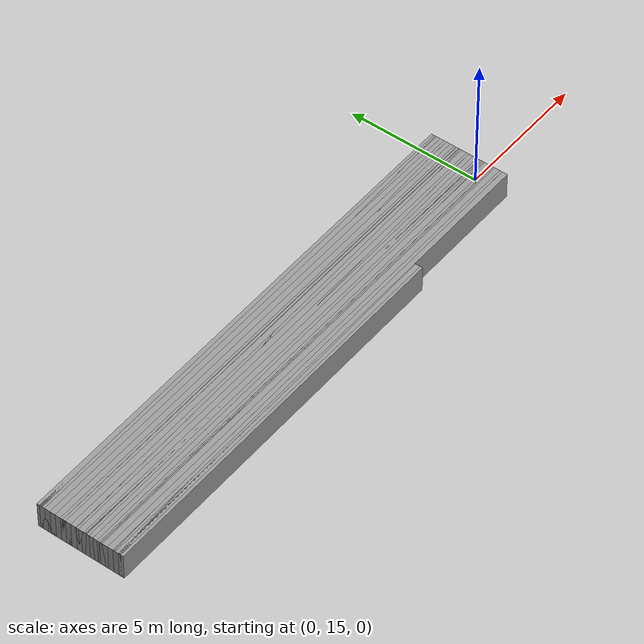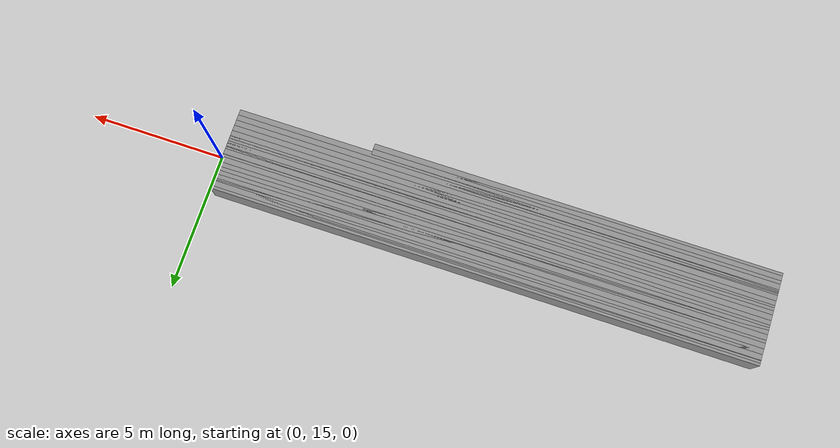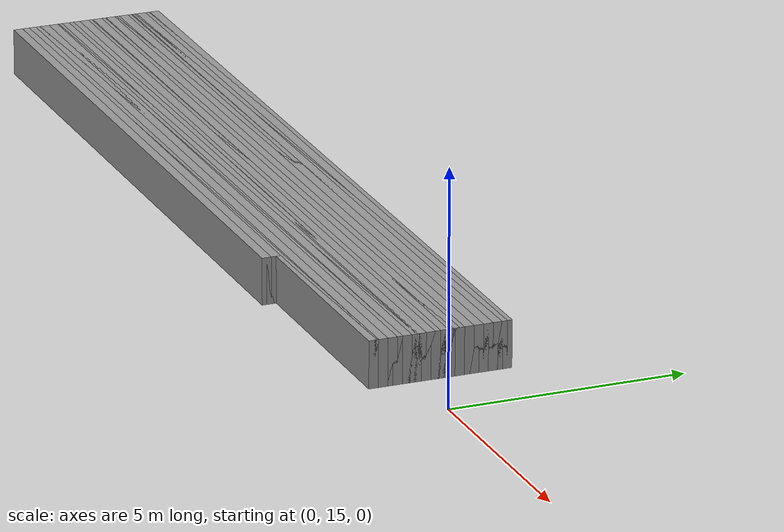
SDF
<sdf version="1.6">
 <world name="GridMap">
  <model name="GridMap">
   <link name="Wall_(126.0,133.0)">
    <collision name="Wall_(126.0,133.0)_Collision">
     <geometry><box><size>14.600000000000001 0.2 1.0</size></box></geometry>
     <pose>-12.600000000000001 13.3 0.5 0 -0 0</pose>
    </collision>
    <visual name="Wall_(126.0,133.0)_Visual">
     <geometry><box><size>14.600000000000001 0.2 1.0</size></box></geometry>
     <pose>-12.600000000000001 13.3 0.5 0 -0 0</pose>
     <material>
      <script><uri>file://media/materials/scripts/gazebo.material</uri><name>Gazebo/Grey</name></script>
      <ambient>1 1 1 1</ambient>
     </material>
     <meta><layer>0</layer></meta>
    </visual>
    <pose>0 0 0.5 0 -0 0</pose>
   </link>
   <link name="Wall_(126.0,134.0)">
    <collision name="Wall_(126.0,134.0)_Collision">
     <geometry><box><size>14.600000000000001 0.2 1.0</size></box></geometry>
     <pose>-12.600000000000001 13.4 0.5 0 -0 0</pose>
    </collision>
    <visual name="Wall_(126.0,134.0)_Visual">
     <geometry><box><size>14.600000000000001 0.2 1.0</size></box></geometry>
     <pose>-12.600000000000001 13.4 0.5 0 -0 0</pose>
     <material>
      <script><uri>file://media/materials/scripts/gazebo.material</uri><name>Gazebo/Grey</name></script>
      <ambient>1 1 1 1</ambient>
     </material>
     <meta><layer>0</layer></meta>
    </visual>
    <pose>0 0 0.5 0 -0 0</pose>
   </link>
   <link name="Wall_(126.0,135.0)">
    <collision name="Wall_(126.0,135.0)_Collision">
     <geometry><box><size>14.600000000000001 0.2 1.0</size></box></geometry>
     <pose>-12.600000000000001 13.5 0.5 0 -0 0</pose>
    </collision>
    <visual name="Wall_(126.0,135.0)_Visual">
     <geometry><box><size>14.600000000000001 0.2 1.0</size></box></geometry>
     <pose>-12.600000000000001 13.5 0.5 0 -0 0</pose>
     <material>
      <script><uri>file://media/materials/scripts/gazebo.material</uri><name>Gazebo/Grey</name></script>
      <ambient>1 1 1 1</ambient>
     </material>
     <meta><layer>0</layer></meta>
    </visual>
    <pose>0 0 0.5 0 -0 0</pose>
   </link>
   <link name="Wall_(101.5,136.0)">
    <collision name="Wall_(101.5,136.0)_Collision">
     <geometry><box><size>19.5 0.2 1.0</size></box></geometry>
     <pose>-10.15 13.600000000000001 0.5 0 -0 0</pose>
    </collision>
    <visual name="Wall_(101.5,136.0)_Visual">
     <geometry><box><size>19.5 0.2 1.0</size></box></geometry>
     <pose>-10.15 13.600000000000001 0.5 0 -0 0</pose>
     <material>
      <script><uri>file://media/materials/scripts/gazebo.material</uri><name>Gazebo/Grey</name></script>
      <ambient>1 1 1 1</ambient>
     </material>
     <meta><layer>0</layer></meta>
    </visual>
    <pose>0 0 0.5 0 -0 0</pose>
   </link>
   <link name="Wall_(101.5,137.0)">
    <collision name="Wall_(101.5,137.0)_Collision">
     <geometry><box><size>19.5 0.2 1.0</size></box></geometry>
     <pose>-10.15 13.700000000000001 0.5 0 -0 0</pose>
    </collision>
    <visual name="Wall_(101.5,137.0)_Visual">
     <geometry><box><size>19.5 0.2 1.0</size></box></geometry>
     <pose>-10.15 13.700000000000001 0.5 0 -0 0</pose>
     <material>
      <script><uri>file://media/materials/scripts/gazebo.material</uri><name>Gazebo/Grey</name></script>
      <ambient>1 1 1 1</ambient>
     </material>
     <meta><layer>0</layer></meta>
    </visual>
    <pose>0 0 0.5 0 -0 0</pose>
   </link>
   <link name="Wall_(101.5,138.0)">
    <collision name="Wall_(101.5,138.0)_Collision">
     <geometry><box><size>19.5 0.2 1.0</size></box></geometry>
     <pose>-10.15 13.8 0.5 0 -0 0</pose>
    </collision>
    <visual name="Wall_(101.5,138.0)_Visual">
     <geometry><box><size>19.5 0.2 1.0</size></box></geometry>
     <pose>-10.15 13.8 0.5 0 -0 0</pose>
     <material>
      <script><uri>file://media/materials/scripts/gazebo.material</uri><name>Gazebo/Grey</name></script>
      <ambient>1 1 1 1</ambient>
     </material>
     <meta><layer>0</layer></meta>
    </visual>
    <pose>0 0 0.5 0 -0 0</pose>
   </link>
   <link name="Wall_(101.5,139.0)">
    <collision name="Wall_(101.5,139.0)_Collision">
     <geometry><box><size>19.5 0.2 1.0</size></box></geometry>
     <pose>-10.15 13.9 0.5 0 -0 0</pose>
    </collision>
    <visual name="Wall_(101.5,139.0)_Visual">
     <geometry><box><size>19.5 0.2 1.0</size></box></geometry>
     <pose>-10.15 13.9 0.5 0 -0 0</pose>
     <material>
      <script><uri>file://media/materials/scripts/gazebo.material</uri><name>Gazebo/Grey</name></script>
      <ambient>1 1 1 1</ambient>
     </material>
     <meta><layer>0</layer></meta>
    </visual>
    <pose>0 0 0.5 0 -0 0</pose>
   </link>
   <link name="Wall_(101.5,140.0)">
    <collision name="Wall_(101.5,140.0)_Collision">
     <geometry><box><size>19.5 0.2 1.0</size></box></geometry>
     <pose>-10.15 14.0 0.5 0 -0 0</pose>
    </collision>
    <visual name="Wall_(101.5,140.0)_Visual">
     <geometry><box><size>19.5 0.2 1.0</size></box></geometry>
     <pose>-10.15 14.0 0.5 0 -0 0</pose>
     <material>
      <script><uri>file://media/materials/scripts/gazebo.material</uri><name>Gazebo/Grey</name></script>
      <ambient>1 1 1 1</ambient>
     </material>
     <meta><layer>0</layer></meta>
    </visual>
    <pose>0 0 0.5 0 -0 0</pose>
   </link>
   <link name="Wall_(101.5,141.0)">
    <collision name="Wall_(101.5,141.0)_Collision">
     <geometry><box><size>19.5 0.2 1.0</size></box></geometry>
     <pose>-10.15 14.100000000000001 0.5 0 -0 0</pose>
    </collision>
    <visual name="Wall_(101.5,141.0)_Visual">
     <geometry><box><size>19.5 0.2 1.0</size></box></geometry>
     <pose>-10.15 14.100000000000001 0.5 0 -0 0</pose>
     <material>
      <script><uri>file://media/materials/scripts/gazebo.material</uri><name>Gazebo/Grey</name></script>
      <ambient>1 1 1 1</ambient>
     </material>
     <meta><layer>0</layer></meta>
    </visual>
    <pose>0 0 0.5 0 -0 0</pose>
   </link>
   <link name="Wall_(101.5,142.0)">
    <collision name="Wall_(101.5,142.0)_Collision">
     <geometry><box><size>19.5 0.2 1.0</size></box></geometry>
     <pose>-10.15 14.200000000000001 0.5 0 -0 0</pose>
    </collision>
    <visual name="Wall_(101.5,142.0)_Visual">
     <geometry><box><size>19.5 0.2 1.0</size></box></geometry>
     <pose>-10.15 14.200000000000001 0.5 0 -0 0</pose>
     <material>
      <script><uri>file://media/materials/scripts/gazebo.material</uri><name>Gazebo/Grey</name></script>
      <ambient>1 1 1 1</ambient>
     </material>
     <meta><layer>0</layer></meta>
    </visual>
    <pose>0 0 0.5 0 -0 0</pose>
   </link>
   <link name="Wall_(101.5,143.0)">
    <collision name="Wall_(101.5,143.0)_Collision">
     <geometry><box><size>19.5 0.2 1.0</size></box></geometry>
     <pose>-10.15 14.3 0.5 0 -0 0</pose>
    </collision>
    <visual name="Wall_(101.5,143.0)_Visual">
     <geometry><box><size>19.5 0.2 1.0</size></box></geometry>
     <pose>-10.15 14.3 0.5 0 -0 0</pose>
     <material>
      <script><uri>file://media/materials/scripts/gazebo.material</uri><name>Gazebo/Grey</name></script>
      <ambient>1 1 1 1</ambient>
     </material>
     <meta><layer>0</layer></meta>
    </visual>
    <pose>0 0 0.5 0 -0 0</pose>
   </link>
   <link name="Wall_(101.5,144.0)">
    <collision name="Wall_(101.5,144.0)_Collision">
     <geometry><box><size>19.5 0.2 1.0</size></box></geometry>
     <pose>-10.15 14.4 0.5 0 -0 0</pose>
    </collision>
    <visual name="Wall_(101.5,144.0)_Visual">
     <geometry><box><size>19.5 0.2 1.0</size></box></geometry>
     <pose>-10.15 14.4 0.5 0 -0 0</pose>
     <material>
      <script><uri>file://media/materials/scripts/gazebo.material</uri><name>Gazebo/Grey</name></script>
      <ambient>1 1 1 1</ambient>
     </material>
     <meta><layer>0</layer></meta>
    </visual>
    <pose>0 0 0.5 0 -0 0</pose>
   </link>
   <link name="Wall_(101.5,145.0)">
    <collision name="Wall_(101.5,145.0)_Collision">
     <geometry><box><size>19.5 0.2 1.0</size></box></geometry>
     <pose>-10.15 14.5 0.5 0 -0 0</pose>
    </collision>
    <visual name="Wall_(101.5,145.0)_Visual">
     <geometry><box><size>19.5 0.2 1.0</size></box></geometry>
     <pose>-10.15 14.5 0.5 0 -0 0</pose>
     <material>
      <script><uri>file://media/materials/scripts/gazebo.material</uri><name>Gazebo/Grey</name></script>
      <ambient>1 1 1 1</ambient>
     </material>
     <meta><layer>0</layer></meta>
    </visual>
    <pose>0 0 0.5 0 -0 0</pose>
   </link>
   <link name="Wall_(101.5,146.0)">
    <collision name="Wall_(101.5,146.0)_Collision">
     <geometry><box><size>19.5 0.2 1.0</size></box></geometry>
     <pose>-10.15 14.600000000000001 0.5 0 -0 0</pose>
    </collision>
    <visual name="Wall_(101.5,146.0)_Visual">
     <geometry><box><size>19.5 0.2 1.0</size></box></geometry>
     <pose>-10.15 14.600000000000001 0.5 0 -0 0</pose>
     <material>
      <script><uri>file://media/materials/scripts/gazebo.material</uri><name>Gazebo/Grey</name></script>
      <ambient>1 1 1 1</ambient>
     </material>
     <meta><layer>0</layer></meta>
    </visual>
    <pose>0 0 0.5 0 -0 0</pose>
   </link>
   <link name="Wall_(101.5,147.0)">
    <collision name="Wall_(101.5,147.0)_Collision">
     <geometry><box><size>19.5 0.2 1.0</size></box></geometry>
     <pose>-10.15 14.700000000000001 0.5 0 -0 0</pose>
    </collision>
    <visual name="Wall_(101.5,147.0)_Visual">
     <geometry><box><size>19.5 0.2 1.0</size></box></geometry>
     <pose>-10.15 14.700000000000001 0.5 0 -0 0</pose>
     <material>
      <script><uri>file://media/materials/scripts/gazebo.material</uri><name>Gazebo/Grey</name></script>
      <ambient>1 1 1 1</ambient>
     </material>
     <meta><layer>0</layer></meta>
    </visual>
    <pose>0 0 0.5 0 -0 0</pose>
   </link>
   <link name="Wall_(101.5,148.0)">
    <collision name="Wall_(101.5,148.0)_Collision">
     <geometry><box><size>19.5 0.2 1.0</size></box></geometry>
     <pose>-10.15 14.8 0.5 0 -0 0</pose>
    </collision>
    <visual name="Wall_(101.5,148.0)_Visual">
     <geometry><box><size>19.5 0.2 1.0</size></box></geometry>
     <pose>-10.15 14.8 0.5 0 -0 0</pose>
     <material>
      <script><uri>file://media/materials/scripts/gazebo.material</uri><name>Gazebo/Grey</name></script>
      <ambient>1 1 1 1</ambient>
     </material>
     <meta><layer>0</layer></meta>
    </visual>
    <pose>0 0 0.5 0 -0 0</pose>
   </link>
   <link name="Wall_(101.5,149.0)">
    <collision name="Wall_(101.5,149.0)_Collision">
     <geometry><box><size>19.5 0.2 1.0</size></box></geometry>
     <pose>-10.15 14.9 0.5 0 -0 0</pose>
    </collision>
    <visual name="Wall_(101.5,149.0)_Visual">
     <geometry><box><size>19.5 0.2 1.0</size></box></geometry>
     <pose>-10.15 14.9 0.5 0 -0 0</pose>
     <material>
      <script><uri>file://media/materials/scripts/gazebo.material</uri><name>Gazebo/Grey</name></script>
      <ambient>1 1 1 1</ambient>
     </material>
     <meta><layer>0</layer></meta>
    </visual>
    <pose>0 0 0.5 0 -0 0</pose>
   </link>
   <link name="Wall_(101.5,150.0)">
    <collision name="Wall_(101.5,150.0)_Collision">
     <geometry><box><size>19.5 0.2 1.0</size></box></geometry>
     <pose>-10.15 15.0 0.5 0 -0 0</pose>
    </collision>
    <visual name="Wall_(101.5,150.0)_Visual">
     <geometry><box><size>19.5 0.2 1.0</size></box></geometry>
     <pose>-10.15 15.0 0.5 0 -0 0</pose>
     <material>
      <script><uri>file://media/materials/scripts/gazebo.material</uri><name>Gazebo/Grey</name></script>
      <ambient>1 1 1 1</ambient>
     </material>
     <meta><layer>0</layer></meta>
    </visual>
    <pose>0 0 0.5 0 -0 0</pose>
   </link>
   <link name="Wall_(101.5,151.0)">
    <collision name="Wall_(101.5,151.0)_Collision">
     <geometry><box><size>19.5 0.2 1.0</size></box></geometry>
     <pose>-10.15 15.100000000000001 0.5 0 -0 0</pose>
    </collision>
    <visual name="Wall_(101.5,151.0)_Visual">
     <geometry><box><size>19.5 0.2 1.0</size></box></geometry>
     <pose>-10.15 15.100000000000001 0.5 0 -0 0</pose>
     <material>
      <script><uri>file://media/materials/scripts/gazebo.material</uri><name>Gazebo/Grey</name></script>
      <ambient>1 1 1 1</ambient>
     </material>
     <meta><layer>0</layer></meta>
    </visual>
    <pose>0 0 0.5 0 -0 0</pose>
   </link>
   <link name="Wall_(101.5,152.0)">
    <collision name="Wall_(101.5,152.0)_Collision">
     <geometry><box><size>19.5 0.2 1.0</size></box></geometry>
     <pose>-10.15 15.200000000000001 0.5 0 -0 0</pose>
    </collision>
    <visual name="Wall_(101.5,152.0)_Visual">
     <geometry><box><size>19.5 0.2 1.0</size></box></geometry>
     <pose>-10.15 15.200000000000001 0.5 0 -0 0</pose>
     <material>
      <script><uri>file://media/materials/scripts/gazebo.material</uri><name>Gazebo/Grey</name></script>
      <ambient>1 1 1 1</ambient>
     </material>
     <meta><layer>0</layer></meta>
    </visual>
    <pose>0 0 0.5 0 -0 0</pose>
   </link>
   <link name="Wall_(101.5,153.0)">
    <collision name="Wall_(101.5,153.0)_Collision">
     <geometry><box><size>19.5 0.2 1.0</size></box></geometry>
     <pose>-10.15 15.3 0.5 0 -0 0</pose>
    </collision>
    <visual name="Wall_(101.5,153.0)_Visual">
     <geometry><box><size>19.5 0.2 1.0</size></box></geometry>
     <pose>-10.15 15.3 0.5 0 -0 0</pose>
     <material>
      <script><uri>file://media/materials/scripts/gazebo.material</uri><name>Gazebo/Grey</name></script>
      <ambient>1 1 1 1</ambient>
     </material>
     <meta><layer>0</layer></meta>
    </visual>
    <pose>0 0 0.5 0 -0 0</pose>
   </link>
   <link name="Wall_(101.5,154.0)">
    <collision name="Wall_(101.5,154.0)_Collision">
     <geometry><box><size>19.5 0.2 1.0</size></box></geometry>
     <pose>-10.15 15.4 0.5 0 -0 0</pose>
    </collision>
    <visual name="Wall_(101.5,154.0)_Visual">
     <geometry><box><size>19.5 0.2 1.0</size></box></geometry>
     <pose>-10.15 15.4 0.5 0 -0 0</pose>
     <material>
      <script><uri>file://media/materials/scripts/gazebo.material</uri><name>Gazebo/Grey</name></script>
      <ambient>1 1 1 1</ambient>
     </material>
     <meta><layer>0</layer></meta>
    </visual>
    <pose>0 0 0.5 0 -0 0</pose>
   </link>
   <link name="Wall_(101.5,155.0)">
    <collision name="Wall_(101.5,155.0)_Collision">
     <geometry><box><size>19.5 0.2 1.0</size></box></geometry>
     <pose>-10.15 15.5 0.5 0 -0 0</pose>
    </collision>
    <visual name="Wall_(101.5,155.0)_Visual">
     <geometry><box><size>19.5 0.2 1.0</size></box></geometry>
     <pose>-10.15 15.5 0.5 0 -0 0</pose>
     <material>
      <script><uri>file://media/materials/scripts/gazebo.material</uri><name>Gazebo/Grey</name></script>
      <ambient>1 1 1 1</ambient>
     </material>
     <meta><layer>0</layer></meta>
    </visual>
    <pose>0 0 0.5 0 -0 0</pose>
   </link>
   <link name="Wall_(101.5,156.0)">
    <collision name="Wall_(101.5,156.0)_Collision">
     <geometry><box><size>19.5 0.2 1.0</size></box></geometry>
     <pose>-10.15 15.600000000000001 0.5 0 -0 0</pose>
    </collision>
    <visual name="Wall_(101.5,156.0)_Visual">
     <geometry><box><size>19.5 0.2 1.0</size></box></geometry>
     <pose>-10.15 15.600000000000001 0.5 0 -0 0</pose>
     <material>
      <script><uri>file://media/materials/scripts/gazebo.material</uri><name>Gazebo/Grey</name></script>
      <ambient>1 1 1 1</ambient>
     </material>
     <meta><layer>0</layer></meta>
    </visual>
    <pose>0 0 0.5 0 -0 0</pose>
   </link>
   <link name="Wall_(101.5,157.0)">
    <collision name="Wall_(101.5,157.0)_Collision">
     <geometry><box><size>19.5 0.2 1.0</size></box></geometry>
     <pose>-10.15 15.700000000000001 0.5 0 -0 0</pose>
    </collision>
    <visual name="Wall_(101.5,157.0)_Visual">
     <geometry><box><size>19.5 0.2 1.0</size></box></geometry>
     <pose>-10.15 15.700000000000001 0.5 0 -0 0</pose>
     <material>
      <script><uri>file://media/materials/scripts/gazebo.material</uri><name>Gazebo/Grey</name></script>
      <ambient>1 1 1 1</ambient>
     </material>
     <meta><layer>0</layer></meta>
    </visual>
    <pose>0 0 0.5 0 -0 0</pose>
   </link>
   <link name="Wall_(101.5,158.0)">
    <collision name="Wall_(101.5,158.0)_Collision">
     <geometry><box><size>19.5 0.2 1.0</size></box></geometry>
     <pose>-10.15 15.8 0.5 0 -0 0</pose>
    </collision>
    <visual name="Wall_(101.5,158.0)_Visual">
     <geometry><box><size>19.5 0.2 1.0</size></box></geometry>
     <pose>-10.15 15.8 0.5 0 -0 0</pose>
     <material>
      <script><uri>file://media/materials/scripts/gazebo.material</uri><name>Gazebo/Grey</name></script>
      <ambient>1 1 1 1</ambient>
     </material>
     <meta><layer>0</layer></meta>
    </visual>
    <pose>0 0 0.5 0 -0 0</pose>
   </link>
   <link name="Wall_(101.5,159.0)">
    <collision name="Wall_(101.5,159.0)_Collision">
     <geometry><box><size>19.5 0.2 1.0</size></box></geometry>
     <pose>-10.15 15.9 0.5 0 -0 0</pose>
    </collision>
    <visual name="Wall_(101.5,159.0)_Visual">
     <geometry><box><size>19.5 0.2 1.0</size></box></geometry>
     <pose>-10.15 15.9 0.5 0 -0 0</pose>
     <material>
      <script><uri>file://media/materials/scripts/gazebo.material</uri><name>Gazebo/Grey</name></script>
      <ambient>1 1 1 1</ambient>
     </material>
     <meta><layer>0</layer></meta>
    </visual>
    <pose>0 0 0.5 0 -0 0</pose>
   </link>
   <link name="Wall_(101.5,160.0)">
    <collision name="Wall_(101.5,160.0)_Collision">
     <geometry><box><size>19.5 0.2 1.0</size></box></geometry>
     <pose>-10.15 16.0 0.5 0 -0 0</pose>
    </collision>
    <visual name="Wall_(101.5,160.0)_Visual">
     <geometry><box><size>19.5 0.2 1.0</size></box></geometry>
     <pose>-10.15 16.0 0.5 0 -0 0</pose>
     <material>
      <script><uri>file://media/materials/scripts/gazebo.material</uri><name>Gazebo/Grey</name></script>
      <ambient>1 1 1 1</ambient>
     </material>
     <meta><layer>0</layer></meta>
    </visual>
    <pose>0 0 0.5 0 -0 0</pose>
   </link>
   <link name="Wall_(101.5,161.0)">
    <collision name="Wall_(101.5,161.0)_Collision">
     <geometry><box><size>19.5 0.2 1.0</size></box></geometry>
     <pose>-10.15 16.1 0.5 0 -0 0</pose>
    </collision>
    <visual name="Wall_(101.5,161.0)_Visual">
     <geometry><box><size>19.5 0.2 1.0</size></box></geometry>
     <pose>-10.15 16.1 0.5 0 -0 0</pose>
     <material>
      <script><uri>file://media/materials/scripts/gazebo.material</uri><name>Gazebo/Grey</name></script>
      <ambient>1 1 1 1</ambient>
     </material>
     <meta><layer>0</layer></meta>
    </visual>
    <pose>0 0 0.5 0 -0 0</pose>
   </link>
   <link name="Wall_(101.5,162.0)">
    <collision name="Wall_(101.5,162.0)_Collision">
     <geometry><box><size>19.5 0.2 1.0</size></box></geometry>
     <pose>-10.15 16.2 0.5 0 -0 0</pose>
    </collision>
    <visual name="Wall_(101.5,162.0)_Visual">
     <geometry><box><size>19.5 0.2 1.0</size></box></geometry>
     <pose>-10.15 16.2 0.5 0 -0 0</pose>
     <material>
      <script><uri>file://media/materials/scripts/gazebo.material</uri><name>Gazebo/Grey</name></script>
      <ambient>1 1 1 1</ambient>
     </material>
     <meta><layer>0</layer></meta>
    </visual>
    <pose>0 0 0.5 0 -0 0</pose>
   </link>
   <link name="Wall_(101.5,163.0)">
    <collision name="Wall_(101.5,163.0)_Collision">
     <geometry><box><size>19.5 0.2 1.0</size></box></geometry>
     <pose>-10.15 16.3 0.5 0 -0 0</pose>
    </collision>
    <visual name="Wall_(101.5,163.0)_Visual">
     <geometry><box><size>19.5 0.2 1.0</size></box></geometry>
     <pose>-10.15 16.3 0.5 0 -0 0</pose>
     <material>
      <script><uri>file://media/materials/scripts/gazebo.material</uri><name>Gazebo/Grey</name></script>
      <ambient>1 1 1 1</ambient>
     </material>
     <meta><layer>0</layer></meta>
    </visual>
    <pose>0 0 0.5 0 -0 0</pose>
   </link>
   <link name="Wall_(101.5,164.0)">
    <collision name="Wall_(101.5,164.0)_Collision">
     <geometry><box><size>19.5 0.2 1.0</size></box></geometry>
     <pose>-10.15 16.400000000000002 0.5 0 -0 0</pose>
    </collision>
    <visual name="Wall_(101.5,164.0)_Visual">
     <geometry><box><size>19.5 0.2 1.0</size></box></geometry>
     <pose>-10.15 16.400000000000002 0.5 0 -0 0</pose>
     <material>
      <script><uri>file://media/materials/scripts/gazebo.material</uri><name>Gazebo/Grey</name></script>
      <ambient>1 1 1 1</ambient>
     </material>
     <meta><layer>0</layer></meta>
    </visual>
    <pose>0 0 0.5 0 -0 0</pose>
   </link>
   <static>1</static>
  </model>
 </world>
</sdf>
